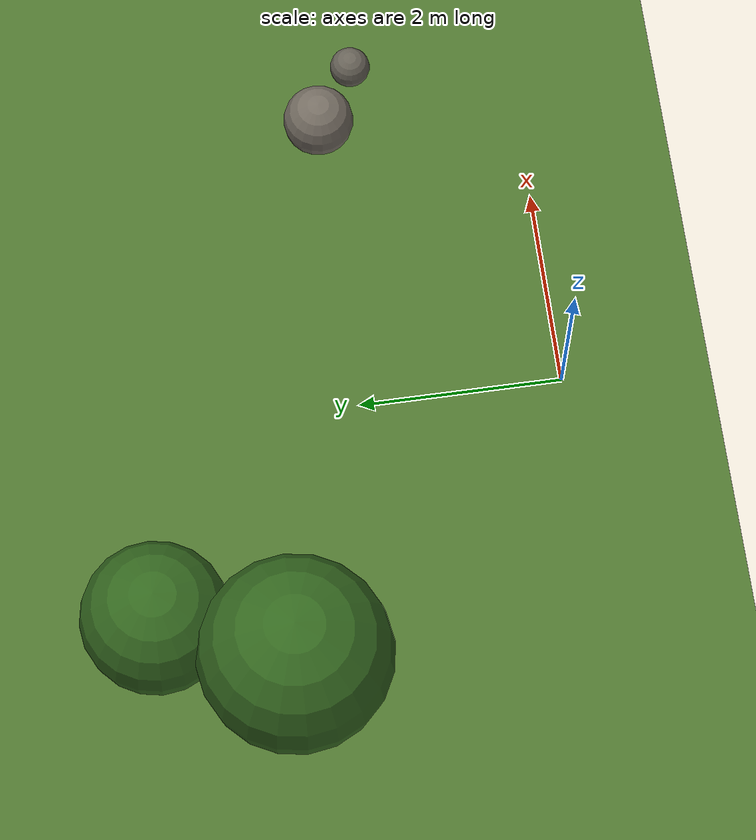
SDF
<?xml version="1.0" ?>
<sdf version="1.9">
  <world name="camo_world">

    <physics name="1ms" type="ignored">
      <max_step_size>0.001</max_step_size>
      <real_time_factor>1.0</real_time_factor>
    </physics>

    <plugin filename="gz-sim-physics-system" name="gz::sim::systems::Physics"/>
    <plugin filename="gz-sim-sensors-system" name="gz::sim::systems::Sensors">
      <render_engine>ogre2</render_engine>
    </plugin>
    <plugin filename="gz-sim-scene-broadcaster-system" name="gz::sim::systems::SceneBroadcaster"/>
    <plugin filename="gz-sim-user-commands-system" name="gz::sim::systems::UserCommands"/>
    <plugin filename="gz-sim-contact-system" name="gz::sim::systems::Contact"/>

    <light type="directional" name="sun">
      <cast_shadows>true</cast_shadows>
      <pose>0 0 10 0 0 0</pose>
      <diffuse>0.9 0.9 0.85 1</diffuse>
      <specular>0.3 0.3 0.3 1</specular>
      <attenuation>
        <range>1000</range>
        <constant>0.9</constant>
        <linear>0.01</linear>
        <quadratic>0.001</quadratic>
      </attenuation>
      <direction>-0.4 0.2 -0.9</direction>
    </light>

    <model name="ground_plane">
      <static>true</static>
      <link name="link">
        <collision name="collision">
          <geometry>
            <plane>
              <normal>0 0 1</normal>
              <size>60 60</size>
            </plane>
          </geometry>
        </collision>
        <visual name="visual">
          <geometry>
            <plane>
              <normal>0 0 1</normal>
              <size>60 60</size>
            </plane>
          </geometry>
          <material>
            <ambient>0.25 0.35 0.15 1</ambient>
            <diffuse>0.3 0.45 0.18 1</diffuse>
            <specular>0.05 0.05 0.05 1</specular>
          </material>
        </visual>
      </link>
    </model>

    <!-- Simple procedural rock cluster: spheres, cheap on performance -->
    <model name="rock_cluster_1">
      <static>true</static>
      <pose>3 2 0.25 0 0 0</pose>
      <link name="link">
        <collision name="collision">
          <geometry><sphere><radius>0.35</radius></sphere></geometry>
        </collision>
        <visual name="visual">
          <geometry><sphere><radius>0.35</radius></sphere></geometry>
          <material>
            <ambient>0.35 0.33 0.3 1</ambient>
            <diffuse>0.45 0.42 0.38 1</diffuse>
          </material>
        </visual>
      </link>
    </model>

    <model name="rock_cluster_2">
      <static>true</static>
      <pose>3.6 1.6 0.15 0 0 0</pose>
      <link name="link">
        <collision name="collision">
          <geometry><sphere><radius>0.2</radius></sphere></geometry>
        </collision>
        <visual name="visual">
          <geometry><sphere><radius>0.2</radius></sphere></geometry>
          <material>
            <ambient>0.32 0.3 0.27 1</ambient>
            <diffuse>0.4 0.38 0.34 1</diffuse>
          </material>
        </visual>
      </link>
    </model>

    <!-- Simple procedural tree: cylinder trunk + sphere canopy -->
    <model name="tree_1">
      <static>true</static>
      <pose>-3 3 0 0 0 0</pose>
      <link name="link">
        <visual name="trunk_visual">
          <pose>0 0 0.75 0 0 0</pose>
          <geometry><cylinder><radius>0.12</radius><length>1.5</length></cylinder></geometry>
          <material><ambient>0.3 0.2 0.1 1</ambient><diffuse>0.35 0.22 0.12 1</diffuse></material>
        </visual>
        <collision name="trunk_collision">
          <pose>0 0 0.75 0 0 0</pose>
          <geometry><cylinder><radius>0.12</radius><length>1.5</length></cylinder></geometry>
        </collision>
        <visual name="canopy_visual">
          <pose>0 0 1.8 0 0 0</pose>
          <geometry><sphere><radius>0.9</radius></sphere></geometry>
          <material><ambient>0.15 0.3 0.1 1</ambient><diffuse>0.2 0.4 0.12 1</diffuse></material>
        </visual>
      </link>
    </model>

    <model name="tree_2">
      <static>true</static>
      <pose>-2.4 4.2 0 0 0 0.6</pose>
      <link name="link">
        <visual name="trunk_visual">
          <pose>0 0 0.6 0 0 0</pose>
          <geometry><cylinder><radius>0.1</radius><length>1.2</length></cylinder></geometry>
          <material><ambient>0.3 0.2 0.1 1</ambient><diffuse>0.35 0.22 0.12 1</diffuse></material>
        </visual>
        <collision name="trunk_collision">
          <pose>0 0 0.6 0 0 0</pose>
          <geometry><cylinder><radius>0.1</radius><length>1.2</length></cylinder></geometry>
        </collision>
        <visual name="canopy_visual">
          <pose>0 0 1.5 0 0 0</pose>
          <geometry><sphere><radius>0.7</radius></sphere></geometry>
          <material><ambient>0.15 0.3 0.1 1</ambient><diffuse>0.2 0.4 0.12 1</diffuse></material>
        </visual>
      </link>
    </model>

  </world>
</sdf>
